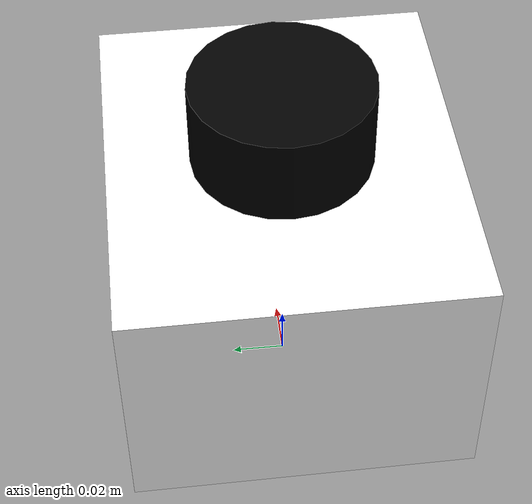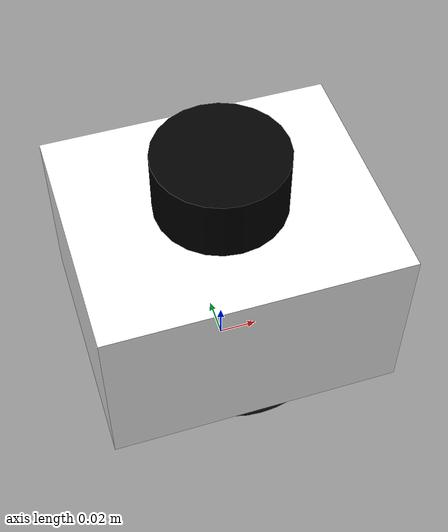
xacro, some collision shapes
<?xml version="1.0"?>
<robot name="FRU_bot" xmlns:xacro="http://ros.org/wiki/xacro">
    <xacro:arg name="remap" default="False" />
    <xacro:arg name="ns" default="" />
    <xacro:arg name="ns_idx" default="" />
    <xacro:property name="prefix" value="$(arg ns_idx)" />

    <xacro:include filename="$(find fru_bot_description)/urdf/robots/2wd.urdf.xacro"/>

    <xacro:robot_2wd
    prefix="${prefix}"
    namespace="$(arg ns)"
    remap="$(arg remap)"
    />

</robot>

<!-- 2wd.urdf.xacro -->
<robot xmlns:xacro="http://ros.org/wiki/xacro">

  <xacro:include filename="$(find fru_bot_description)/urdf/2wd_properties.urdf.xacro" />
  <xacro:include filename="$(find fru_bot_description)/urdf/mech/base.urdf.xacro" />
  <xacro:include filename="$(find fru_bot_description)/urdf/mech/wheel.urdf.xacro" />
  <xacro:include filename="$(find fru_bot_description)/urdf/mech/caster_wheel.urdf.xacro" />
  <xacro:include filename="$(find fru_bot_description)/urdf/sensors/imu.urdf.xacro" />
  <xacro:include filename="$(find fru_bot_description)/urdf/sensors/generic_laser.urdf.xacro" />
  <xacro:include filename="$(find fru_bot_description)/urdf/controllers/diff_drive.urdf.xacro" />

  <xacro:macro name="robot_2wd" params="prefix namespace remap">

    <xacro:base
      prefix="${prefix}"
      length="${base_length}"
      width="${base_width}"
      height="${base_height}"
      inner_width="${base_inner_width}"
      mass="${base_mass}"
      wheel_radius="${wheel_radius}"
      wheel_pos_z="${wheel_pos_z}"
    />

    <xacro:wheel
      prefix="${prefix}"
      side="left"
      radius="${wheel_radius}"
      width="${wheel_width}"
      pos_x="${wheel_pos_x}"
      pos_y="${wheel_pos_y}"
      pos_z="${wheel_pos_z}"
      mass="${wheel_mass}"
    />

    <xacro:wheel
      prefix="${prefix}"
      side="right"
      radius="${wheel_radius}"
      width="${wheel_width}"
      pos_x="${wheel_pos_x}"
      pos_y="${-wheel_pos_y}"
      pos_z="${wheel_pos_z}"
      mass="${wheel_mass}"
    />

    <xacro:if value="${front_caster_wheel}">
      <xacro:caster_wheel
        prefix="${prefix}"
        side="front"
        mass="0.025"
        base_length="${base_length}"
        wheel_radius="${wheel_radius}"
        wheel_pos_z="${wheel_pos_z}"
      />
    </xacro:if>

    <xacro:imu
      prefix="${prefix}"
      namespace="${namespace}"
    />

    <xacro:generic_laser
      prefix="${prefix}"
      namespace="${namespace}"
      >

      <xacro:insert_block name="laser_pose"/>
    </xacro:generic_laser>

    <xacro:diff_drive_controller
      prefix="${prefix}"
      namespace="${namespace}"
      remap="${remap}"
      wheel_separation="${wheel_pos_y * 2}"
      wheel_radius="${wheel_radius}"
      wheel_torque="${wheel_torque}"
    />
  </xacro:macro>
</robot>

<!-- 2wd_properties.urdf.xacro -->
<robot xmlns:xacro="http://ros.org/wiki/xacro">

  <xacro:property name="base_z_offset" value="0.016" />

  <xacro:property name="base_col_height" value="0.057" />
  <xacro:property name="base_bottom_height" value="0.032" />
  <xacro:property name="base_pfm_height" value="0.003" />

  <xacro:property name="base_inner_width" value="0.071" />
  <xacro:property name="base_outer_width" value="0.126" />

  <xacro:property name=
  "base_length" value="0.150" />
  <xacro:property name="base_width" value="${base_outer_width}" />
  <xacro:property name="base_height" value=
      "${base_bottom_height+base_col_height+base_pfm_height
  }" />
  <xacro:property name="base_mass" value="0.54" />

  <xacro:property name="wheel_radius" value="0.03" />
  <xacro:property name="wheel_width" value="0.008" />
  <xacro:property name="wheel_pos_x" value="0.005" />
  <xacro:property name="wheel_pos_y" value="0.052" />
  <xacro:property name="wheel_pos_z" value="-0.017" />
  <xacro:property name="wheel_mass" value="0.01" />
  <xacro:property name="wheel_torque" value="0.84" />
  <xacro:property name="front_caster_wheel" value="true" />
  <xacro:property name="rear_caster_wheel" value="false" />

  <xacro:property name="laser_pose">
    <origin xyz="0 0 ${base_col_height}" rpy="0 0 0"/>
  </xacro:property>
</robot>

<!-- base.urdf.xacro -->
<robot xmlns:xacro="http://ros.org/wiki/xacro">
  <xacro:macro name="base" params="prefix length width height mass wheel_radius wheel_pos_z inner_width">
    <link name="base_footprint${prefix}"/>

    <link name="base_link${prefix}">
      <visual>
        <origin xyz="0 0 -0.006" rpy="0 0 0"/>
        <geometry>
          <mesh filename="file://$(find fru_bot_description)/urdf/meshes/capstone_mesh_FRU.stl" scale="0.001 0.001 0.001"/>
        </geometry>
        <material name="white">
          <color rgba="1 1 1 1.0"/>
        </material>
      </visual>

      <collision>
        <origin xyz="0 0 ${base_z_offset}" rpy="0 0 0"/>
        <geometry>
          <box size="${length} ${width} ${height}"/>
        </geometry>
      </collision>

      <inertial>
        <origin xyz="0.022 0 0" rpy="0 0 0"/>
        <mass value="${mass}"/>
        <inertia ixx="${(4/12) * mass * ((width * width) + (height * height))}" ixy="0.0" ixz="0.0"
                 iyy="${(4/12) * mass * ((length * length) + (height * height))}" iyz="0.0"
                 izz="${(4/12) * mass * ((length * length) + (width  * width))}"/>
      </inertial>
    </link>

    <gazebo reference="base_link${prefix}">
      <visual>
        <material>
          <ambient>1 1 1 1.0</ambient>
          <diffuse>1 1 1 1.0</diffuse>
          <specular>0.99 0.99 0.99 1.0</specular>
          <emissive>0.5 0.5 0.5 0.0</emissive>
        </material>
      </visual>
    </gazebo>

    <joint name="base_to_footprint${prefix}" type="fixed">
      <parent link="base_footprint${prefix}"/>
      <child link="base_link${prefix}"/>
      <origin xyz="0 0 ${wheel_radius - wheel_pos_z}" rpy="0 0 0"/>
    </joint>
  </xacro:macro>
</robot>

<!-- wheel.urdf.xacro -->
<robot xmlns:xacro="http://ros.org/wiki/xacro">
  <xacro:macro name="wheel" params="prefix side radius width pos_x pos_y pos_z mass">
    <link name="${side}_wheel_link${prefix}">
      <visual>
        <origin xyz="0 0 0" rpy="${pi/2} 0 0"/>
        <geometry>
          <cylinder radius="${radius}" length="${width}"/>
        </geometry>
        <material name="gray">
            <color rgba="0.1 0.1 0.1 1.0"/>
        </material>
      </visual>
      <collision>
        <origin xyz="0 0 0" rpy="${pi/2} 0 0"/>
        <geometry>
          <cylinder radius="${radius}" length="${width}"/>
        </geometry>
      </collision>

      <inertial>
        <origin xyz="0 0 0" rpy="0 0 0"/>
        <mass value="${mass}"/>
        <inertia ixx="${(2/5) * mass * (radius * radius)}" ixy="0" ixz="0"
                 iyy="${(2/5) * mass * (radius * radius)}" iyz="0"
                 izz="${(2/5) * mass * (radius * radius)}" />
      </inertial>
    </link>
    <gazebo reference="${side}_wheel_link${prefix}">
      <visual>
        <material>
          <ambient>0.1 0.1 0.1 1.0</ambient>
          <diffuse>0.1 0.1 0.1 1.0</diffuse>
          <specular>0.1 0.1 0.1 1.0</specular>
          <emissive>0.1 0.1 0.1 1.0</emissive>
        </material>
      </visual>
    </gazebo>

    <joint name="${side}_wheel_joint${prefix}" type="continuous">
      <axis xyz="0 1 0" />
      <parent link="base_link${prefix}"/>
      <child link="${side}_wheel_link${prefix}"/>
      <origin xyz="${pos_x} ${pos_y} ${pos_z}" rpy="0 0 0"/>
    </joint>
  </xacro:macro>
</robot>

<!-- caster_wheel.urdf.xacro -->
<robot xmlns:xacro="http://ros.org/wiki/xacro">
  <xacro:macro name="caster_wheel" params="prefix side mass base_length wheel_radius wheel_pos_z">
    <xacro:property name="caster_wheel_radius" value="${(wheel_radius - wheel_pos_z) / 2}" />
    <xacro:if value="${side == 'front'}">
        <xacro:property name="caster_wheel_x" value="${(base_length / 2) - caster_wheel_radius}" />
    </xacro:if>

    <xacro:if value="${side == 'rear'}">
        <xacro:property name="caster_wheel_x" value="${-(base_length / 2) + caster_wheel_radius}" />
    </xacro:if>

    <link name="${side}_caster_wheel_link${prefix}">
      <visual>
        <origin xyz="0 0 0" rpy="0 0 0"/>
        <geometry>
          <sphere radius="${caster_wheel_radius}" />
        </geometry>
        <material name="gray">
            <color rgba="0.1 0.1 0.1 1.0"/>
        </material>
      </visual>

      <collision>
        <origin xyz="0 0 0" rpy="0 0 0"/>
        <geometry>
          <sphere radius="${caster_wheel_radius}" />
        </geometry>
      </collision>

      <inertial>
        <origin xyz="0 0 0" rpy="0 0 0"/>
        <mass value="${mass}"/>
        <inertia ixx="${(2/5) * mass * (caster_wheel_radius * caster_wheel_radius)}" ixy="0" ixz="0"
                 iyy="${(2/5) * mass * (caster_wheel_radius * caster_wheel_radius)}" iyz="0"
                 izz="${(2/5) * mass * (caster_wheel_radius * caster_wheel_radius)}" />
      </inertial>
    </link>

    <gazebo reference="${side}_caster_wheel_link${prefix}">
      <visual/>
        <material>
          <ambient>0.1 0.1 0.1 1.0</ambient>
          <diffuse>0.1 0.1 0.1 1.0</diffuse>
          <specular>0.1 0.1 0.1 1.0</specular>
          <emissive>0.1 0.1 0.1 1.0</emissive>
        </material>
      <visual/>
      <mu1>0.01</mu1>
      <mu2>0.01</mu2>
    </gazebo>

    <joint name="${side}_caster_wheel_joint${prefix}" type="fixed">
      <parent link="base_link${prefix}"/>
      <child link="${side}_caster_wheel_link${prefix}"/>
      <origin xyz="${caster_wheel_x} 0 -${caster_wheel_radius}" rpy="0 0 0"/>
    </joint>
  </xacro:macro>
</robot>

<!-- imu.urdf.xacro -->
<robot xmlns:xacro="http://ros.org/wiki/xacro">
  <xacro:macro name="imu" params="prefix namespace">
    <link name="imu_link${prefix}"/>

    <joint name="imu_to_base_link${prefix}" type="fixed">
      <parent link="base_link${prefix}"/>
      <child link="imu_link${prefix}"/>
      <origin xyz="0 0 0" rpy="0 0 0"/>
    </joint>

    <gazebo reference="imu_link${prefix}">
      <gravity>true</gravity>
      <sensor name="imu_sensor" type="imu">
      <always_on>true</always_on>
      <update_rate>20</update_rate>
      <visualize>true</visualize>
      <topic>__default_topic__</topic>
      <plugin filename="libgazebo_ros_imu_sensor.so" name="imu_plugin">
        <ros>
          <namespace>${namespace}</namespace>
          <remapping>~/out:=imu/data</remapping>
        </ros>
        <initialOrientationAsReference>false</initialOrientationAsReference>
        <topicName>imu/data</topicName>
        <bodyName>imu_link${prefix}</bodyName>
        <updateRateHZ>10.0</updateRateHZ>
        <gaussianNoise>0.0</gaussianNoise>
        <xyzOffset>0 0 0</xyzOffset>
        <rpyOffset>0 0 0</rpyOffset>
        <frameName>imu_link${prefix}</frameName>
        <noise>
          <type>gaussian</type>
          <mean>0.0</mean>
          <stddev>0.001</stddev>
        </noise>
      </plugin>
      <pose>0 0 0 0 0 0</pose>
      </sensor>
    </gazebo>
  </xacro:macro>
</robot>

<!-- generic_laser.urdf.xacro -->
<robot xmlns:xacro="http://ros.org/wiki/xacro">
  <xacro:include filename="$(find fru_bot_description)/urdf/sensors/laser.urdf.xacro" />

  <xacro:macro name="generic_laser" params="prefix namespace *origin">
    <xacro:laser
      prefix="${prefix}"
      namespace="${namespace}"
      update_rate="5"
      ray_count="360"
      min_angle="0.0"
      max_angle="6.28319"
      min_range="0.12"
      max_range="3.5"
      frame_id="laser"
      topic_name="scan"
    >
      <xacro:insert_block name="origin" />
    </xacro:laser>
  </xacro:macro>

</robot>

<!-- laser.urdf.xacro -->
<robot xmlns:xacro="http://ros.org/wiki/xacro">
  <xacro:property name="M_PI" value="3.1415926535897931" />
  <xacro:macro name="laser" params="prefix namespace *origin update_rate ray_count min_angle max_angle min_range max_range frame_id topic_name">
    <link name="${frame_id}${prefix}">
      <visual>
        <origin xyz="0 0 0.019" rpy="0 0 0"/>
        <geometry>
          <cylinder radius="0.033" length="0.038"/>
        </geometry>
        <material name="black">
            <color rgba="0.0 0.0 0.0 1.0"/>
        </material>
      </visual>
      <collision>
        <origin xyz="0 0 0.019" rpy="0 0 0"/>
        <geometry>
          <box size=".095 0.066 0.04" length="0.016"/>
        </geometry>
      </collision>

      <inertial>
        <origin xyz="0 0 0" rpy="0 0 0"/>
        <mass value="0.1"/>
        <inertia ixx="${(2/5) * 0.1 * (0.0375 * 0.0375)}" ixy="0" ixz="0"
                 iyy="${(2/5) * 0.1 * (0.0375 * 0.0375)}" iyz="0"
                 izz="${(2/5) * 0.1 * (0.0375 * 0.0375)}" />
      </inertial>
    </link>

    <gazebo reference="${frame_id}${prefix}">
      <visual>
        <material>
          <ambient>0.0 0.0 0.0 1.0</ambient>
          <diffuse>0.0 0.0 0.0 1.0</diffuse>
          <specular>0.0 0.0 0.0 1.0</specular>
          <emissive>0.0 0.0 0.0 0.0</emissive>
        </material>
      </visual>
    </gazebo>

    <joint name="${frame_id}_to_base_link${prefix}" type="fixed">
      <parent link="base_link${prefix}"/>
      <child link="${frame_id}${prefix}"/>
      <xacro:insert_block name="origin" />
    </joint>

    <gazebo reference="${frame_id}${prefix}">
      <sensor type="ray" name="${frame_id}_lds_lfcd_sensor_${prefix}">
        <always_on>true</always_on>
        <update_rate>${update_rate}</update_rate>
        <pose>0 0 0 0 0 0</pose>
        <visualize>false</visualize>
        <ray>
          <scan>
            <horizontal>
              <samples>${ray_count}</samples>
              <resolution>1</resolution>
              <min_angle>${min_angle}</min_angle>
              <max_angle>${max_angle}</max_angle>
            </horizontal>
          </scan>
          <range>
            <min>${min_range}</min>
            <max>${max_range}</max>
            <resolution>0.015</resolution>
          </range>
          <noise>
          <type>gaussian</type>
            <mean>0.0</mean>
            <stddev>0.01</stddev>
          </noise>
        </ray>
        <plugin name="${frame_id}_gazebo_ros_lds_lfcd_controller" filename="libgazebo_ros_ray_sensor.so">
          <ros>
            <namespace>${namespace}</namespace>
            <remapping>~/out:=${topic_name}</remapping>
          </ros>
          <output_type>sensor_msgs/LaserScan</output_type>
          <alwaysOn>true</alwaysOn>
          <updateRate>${update_rate}</updateRate>
          <topicName>${topic_name}</topicName>
          <frame_name>${frame_id}${prefix}</frame_name>
          <output_type>sensor_msgs/LaserScan</output_type>
        </plugin>
      </sensor>
    </gazebo>
  </xacro:macro>
</robot>
